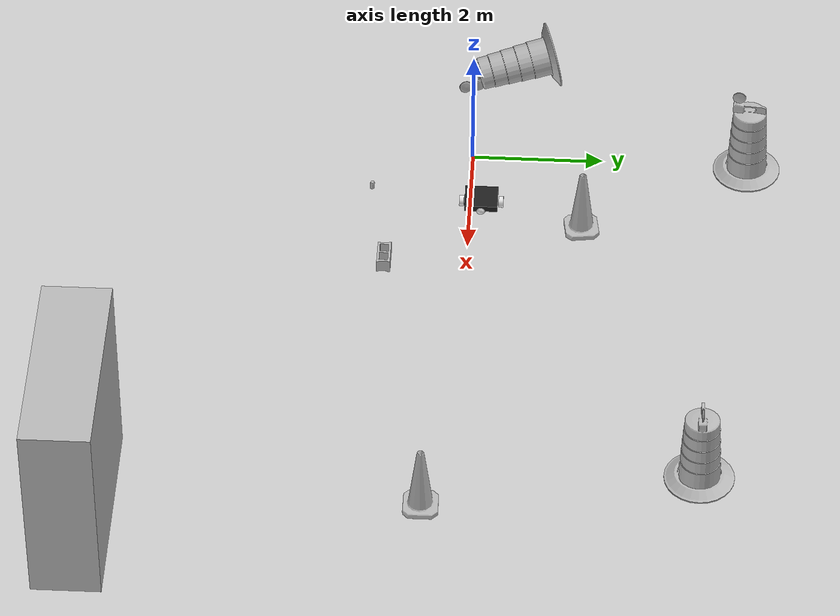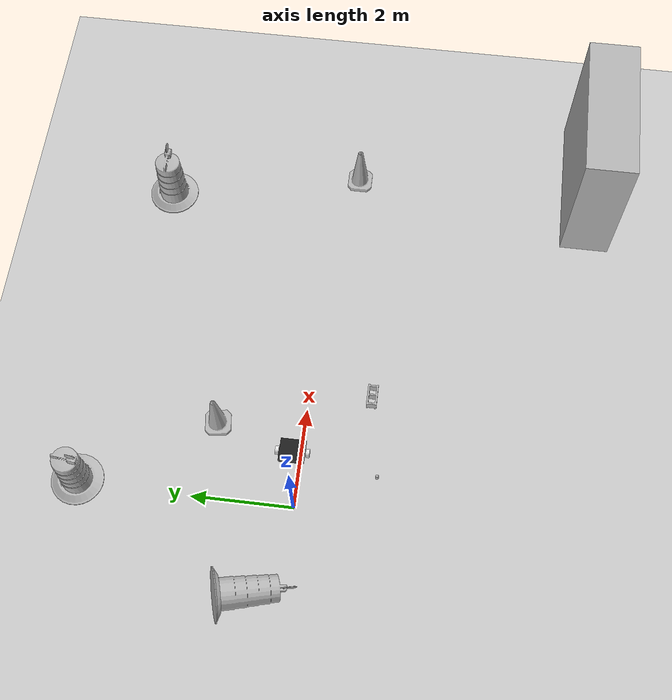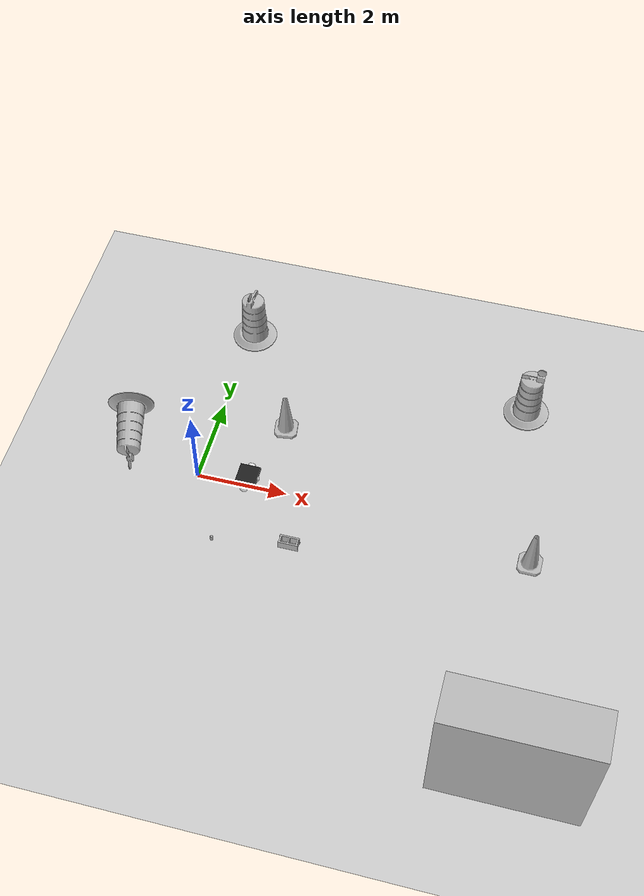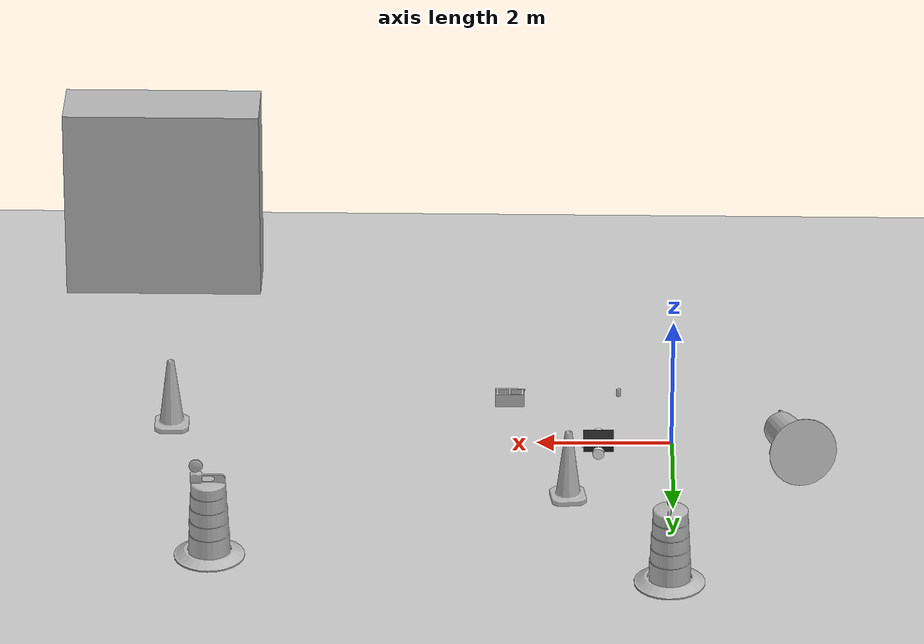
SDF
<sdf version="1.7">
 <world name="default">
  <light name="sun" type="directional">
   <pose>0 0 10 0 -0 0</pose>
   <diffuse>0.8 0.8 0.8 1</diffuse>
   <specular>0.2 0.2 0.2 1</specular>
   <attenuation>
    <range>1000</range>
    <constant>0.9</constant>
    <linear>0.01</linear>
    <quadratic>0.001</quadratic>
   </attenuation>
   <direction>-0.5 0.1 -0.9</direction>
   <spot><inner_angle>0</inner_angle><outer_angle>0</outer_angle><falloff>0</falloff></spot>
  </light>
  <model name="ground_plane">
   <static>1</static>
   <link name="link">
    <collision name="collision">
     <geometry><plane><normal>0 0 1</normal><size>100 100</size></plane></geometry>
     <surface>
      <contact><collide_bitmask>65535</collide_bitmask></contact>
      <friction><ode><mu>100</mu><mu2>50</mu2></ode></friction>
     </surface>
    </collision>
    <visual name="visual">
     <cast_shadows>0</cast_shadows>
     <geometry><plane><normal>0 0 1</normal><size>100 100</size></plane></geometry>
     <material>
      <script><uri>file://media/materials/scripts/gazebo.material</uri><name>Gazebo/Grey</name></script>
     </material>
    </visual>
   </link>
  </model>
  <gravity>0 0 -9.8</gravity>
  <magnetic_field>6e-06 2.3e-05 -4.2e-05</magnetic_field>
  <atmosphere type="adiabatic"/>
  <physics type="ode">
   <max_step_size>0.001</max_step_size>
   <real_time_factor>1</real_time_factor>
   <real_time_update_rate>1000</real_time_update_rate>
  </physics>
  <scene><ambient>0.4 0.4 0.4 1</ambient><background>0.7 0.7 0.7 1</background><shadows>1</shadows></scene>
  <audio><device>default</device></audio>
  <spherical_coordinates>
   <surface_model>EARTH_WGS84</surface_model>
   <latitude_deg>0</latitude_deg>
   <longitude_deg>0</longitude_deg>
   <elevation>0</elevation>
   <heading_deg>0</heading_deg>
  </spherical_coordinates>
  <model name="my_bot">
   <link name="base_link">
    <inertial>
     <pose>0.150329 0 0.049342 0 -0 0</pose>
     <mass>15.2</mass>
     <inertia>
      <ixx>0.326071</ixx>
      <ixy>0</ixy>
      <ixz>0.000246711</ixz>
      <iyy>0.26682</iyy>
      <iyz>0</iyz>
      <izz>0.566326</izz>
     </inertia>
    </inertial>
    <collision name="base_link_fixed_joint_lump__navi_collision">
     <pose>0 0 0.05 0 -0 0</pose>
     <geometry><box><size>0.45 0.5 0.1</size></box></geometry>
    </collision>
    <collision name="base_link_fixed_joint_lump__caster_wheel_collision_1">
     <pose>0.175 0 0 0 -0 0</pose>
     <geometry><sphere><radius>0.0825</radius></sphere></geometry>
     <surface><friction><ode><mu>0.001</mu><mu2>0.001</mu2></ode></friction></surface>
    </collision>
    <visual name="base_link_fixed_joint_lump__navi_visual">
     <pose>0 0 0.05 0 -0 0</pose>
     <geometry><box><size>0.45 0.5 0.1</size></box></geometry>
     <material>
      <script><name>Gazebo/Black</name><uri>file://media/materials/scripts/gazebo.material</uri></script>
     </material>
    </visual>
    <visual name="base_link_fixed_joint_lump__caster_wheel_visual_1">
     <pose>0.175 0 0 0 -0 0</pose>
     <geometry><sphere><radius>0.0825</radius></sphere></geometry>
     <material>
      <script><name>Gazebo/White</name><uri>file://media/materials/scripts/gazebo.material</uri></script>
     </material>
    </visual>
   </link>
   <joint name="left_wheel_joint" type="revolute">
    <pose relative_to="base_link">0 0.3 0 -1.5708 0 0</pose>
    <parent>base_link</parent>
    <child>left_wheel</child>
    <axis>
     <xyz>0 0 1</xyz>
     <limit><lower>-1e+16</lower><upper>1e+16</upper></limit>
     <dynamics><spring_reference>0</spring_reference><spring_stiffness>0</spring_stiffness></dynamics>
    </axis>
   </joint>
   <link name="left_wheel">
    <pose relative_to="left_wheel_joint">0 0 0 0 -0 0</pose>
    <inertial>
     <mass>4</mass>
     <inertia>
      <ixx>0.00885833</ixx>
      <ixy>0</ixy>
      <ixz>0</ixz>
      <iyy>0.00885833</iyy>
      <iyz>0</iyz>
      <izz>0.01445</izz>
     </inertia>
    </inertial>
    <collision name="left_wheel_collision">
     <geometry><cylinder><length>0.07</length><radius>0.085</radius></cylinder></geometry>
    </collision>
    <visual name="left_wheel_visual">
     <geometry><cylinder><length>0.07</length><radius>0.085</radius></cylinder></geometry>
     <material>
      <script><name>Gazebo/White</name><uri>file://media/materials/scripts/gazebo.material</uri></script>
     </material>
    </visual>
   </link>
   <joint name="right_wheel_joint" type="revolute">
    <pose relative_to="base_link">0 -0.3 0 1.5708 -0 0</pose>
    <parent>base_link</parent>
    <child>right_wheel</child>
    <axis>
     <xyz>0 0 -1</xyz>
     <limit><lower>-1e+16</lower><upper>1e+16</upper></limit>
     <dynamics><spring_reference>0</spring_reference><spring_stiffness>0</spring_stiffness></dynamics>
    </axis>
   </joint>
   <link name="right_wheel">
    <pose relative_to="right_wheel_joint">0 0 0 0 -0 0</pose>
    <inertial>
     <mass>4</mass>
     <inertia>
      <ixx>0.00885833</ixx>
      <ixy>0</ixy>
      <ixz>0</ixz>
      <iyy>0.00885833</iyy>
      <iyz>0</iyz>
      <izz>0.01445</izz>
     </inertia>
    </inertial>
    <collision name="right_wheel_collision">
     <geometry><cylinder><length>0.07</length><radius>0.085</radius></cylinder></geometry>
    </collision>
    <visual name="right_wheel_visual">
     <geometry><cylinder><length>0.07</length><radius>0.085</radius></cylinder></geometry>
     <material>
      <script><name>Gazebo/White</name><uri>file://media/materials/scripts/gazebo.material</uri></script>
     </material>
    </visual>
   </link>
   <static>0</static>
   <plugin name="diff_drive" filename="libgazebo_ros_diff_drive.so">
    <left_joint>left_wheel_joint</left_joint>
    <right_joint>right_wheel_joint</right_joint>
    <wheel_separation>0.6</wheel_separation>
    <wheel_diameter>0.17</wheel_diameter>
    <max_wheel_torque>200</max_wheel_torque>
    <max_wheel_acceleration>10.0</max_wheel_acceleration>
    <odometry_frame>odom</odometry_frame>
    <robot_base_frame>base_link</robot_base_frame>
    <publish_odom>1</publish_odom>
    <publish_odom_tf>1</publish_odom_tf>
    <publish_wheel_tf>1</publish_wheel_tf>
   </plugin>
   <pose>1.08512 0.172404 0.085 0 0.014313 0.000134</pose>
  </model>
  <model name="Construction Barrel">
   <link name="link">
    <inertial>
     <pose>0 0 0.4 0 -0 0</pose>
     <mass>500</mass>
     <inertia><ixx>51.2096</ixx><iyy>51.2096</iyy><izz>25</izz><ixy>0</ixy><ixz>0</ixz><iyz>0</iyz></inertia>
    </inertial>
    <collision name="collision">
     <geometry><mesh><uri>model://construction_barrel/meshes/construction_barrel.dae</uri></mesh></geometry>
    </collision>
    <visual name="visual">
     <geometry><mesh><uri>model://construction_barrel/meshes/construction_barrel.dae</uri></mesh></geometry>
    </visual>
   </link>
   <pose>-1.89946 1.17339 0.502161 2.47109 1.36201 1.14892</pose>
  </model>
  <model name="Construction Barrel_0">
   <link name="link">
    <inertial>
     <pose>0 0 0.4 0 -0 0</pose>
     <mass>500</mass>
     <inertia><ixx>51.2096</ixx><iyy>51.2096</iyy><izz>25</izz><ixy>0</ixy><ixz>0</ixz><iyz>0</iyz></inertia>
    </inertial>
    <collision name="collision">
     <geometry><mesh><uri>model://construction_barrel/meshes/construction_barrel.dae</uri></mesh></geometry>
    </collision>
    <visual name="visual">
     <geometry><mesh><uri>model://construction_barrel/meshes/construction_barrel.dae</uri></mesh></geometry>
    </visual>
   </link>
   <pose>0.079251 4.2054 -2e-06 -8e-06 -8e-06 -1.67871</pose>
  </model>
  <model name="cinder_block">
   <link name="link">
    <inertial>
     <pose>0 0 0.1016 0 -0 0</pose>
     <mass>5</mass>
     <inertia>
      <ixx>0.028705</ixx>
      <ixy>0</ixy>
      <iyy>0.073708</iyy>
      <ixz>0</ixz>
      <iyz>0</iyz>
      <izz>0.06908</izz>
     </inertia>
    </inertial>
    <visual name="visual">
     <geometry><mesh><uri>model://cinder_block/meshes/cinder_block.dae</uri></mesh></geometry>
    </visual>
    <collision name="left">
     <pose>0 -0.08465 0.1016 0 -0 0</pose>
     <geometry><box><size>0.43495 0.0339 0.2032</size></box></geometry>
     <surface>
      <contact><ode><max_vel>0.1</max_vel><min_depth>0.001</min_depth></ode></contact>
      <friction><ode><mu>1</mu><mu2>1</mu2></ode></friction>
     </surface>
    </collision>
    <collision name="right">
     <pose>0 0.08465 0.1016 0 -0 0</pose>
     <geometry><box><size>0.43495 0.0339 0.2032</size></box></geometry>
     <surface>
      <contact><ode><max_vel>0.1</max_vel><min_depth>0.001</min_depth></ode></contact>
      <friction><ode><mu>1</mu><mu2>1</mu2></ode></friction>
     </surface>
    </collision>
    <collision name="front">
     <pose>0.18625 0 0.1016 0 -0 0</pose>
     <geometry><box><size>0.0339 0.1354 0.203</size></box></geometry>
     <surface>
      <contact><ode><max_vel>0.1</max_vel><min_depth>0.001</min_depth></ode></contact>
      <friction><ode><mu>1</mu><mu2>1</mu2></ode></friction>
     </surface>
    </collision>
    <collision name="middle">
     <pose>0 0 0.1016 0 -0 0</pose>
     <geometry><box><size>0.0339 0.1354 0.203</size></box></geometry>
     <surface>
      <contact><ode><max_vel>0.1</max_vel><min_depth>0.001</min_depth></ode></contact>
      <friction><ode><mu>1</mu><mu2>1</mu2></ode></friction>
     </surface>
    </collision>
    <collision name="back">
     <pose>-0.18625 0 0.1016 0 -0 0</pose>
     <geometry><box><size>0.0339 0.1354 0.203</size></box></geometry>
     <surface>
      <contact><ode><max_vel>0.1</max_vel><min_depth>0.001</min_depth></ode></contact>
      <friction><ode><mu>1</mu><mu2>1</mu2></ode></friction>
     </surface>
    </collision>
   </link>
   <pose>2.40563 -1.23918 -6e-06 -1e-06 2.8e-05 -0</pose>
  </model>
  <model name="coke_can">
   <link name="link">
    <inertial>
     <pose>0 0 0.06 0 -0 0</pose>
     <mass>0.39</mass>
     <inertia>
      <ixx>0.00055575</ixx>
      <ixy>0</ixy>
      <ixz>0</ixz>
      <iyy>0.00055575</iyy>
      <iyz>0</iyz>
      <izz>0.0001755</izz>
     </inertia>
    </inertial>
    <collision name="collision">
     <pose>0.003937 0.004724 -0.18 0 -0 0</pose>
     <geometry><mesh><uri>model://coke_can/meshes/coke_can.dae</uri></mesh></geometry>
     <surface>
      <friction><ode><mu>1</mu><mu2>1</mu2></ode></friction>
      <contact><ode><kp>1e+07</kp><kd>1</kd><min_depth>0.001</min_depth><max_vel>0.1</max_vel></ode></contact>
     </surface>
    </collision>
    <visual name="visual">
     <pose>0.003937 0.004724 -0.18 0 -0 0</pose>
     <geometry><mesh><uri>model://coke_can/meshes/coke_can.dae</uri></mesh></geometry>
    </visual>
   </link>
   <pose>0.779688 -1.51308 -0.002905 -0.064009 -0.006334 -0.000612</pose>
  </model>
  <model name="Construction Cone">
   <link name="link">
    <collision name="collision">
     <geometry>
      <mesh><scale>10 10 10</scale><uri>model://construction_cone/meshes/construction_cone.dae</uri></mesh>
     </geometry>
    </collision>
    <visual name="visual">
     <geometry>
      <mesh><scale>10 10 10</scale><uri>model://construction_cone/meshes/construction_cone.dae</uri></mesh>
     </geometry>
    </visual>
    <inertial>
     <inertia><ixx>1</ixx><ixy>0</ixy><ixz>0</ixz><iyy>1</iyy><iyz>0</iyz><izz>1</izz></inertia>
     <mass>1</mass>
    </inertial>
   </link>
   <pose>1.53052 1.70664 -0 0 -0 0.134745</pose>
  </model>
  <model name="Construction Barrel_1">
   <link name="link">
    <inertial>
     <pose>0 0 0.4 0 -0 0</pose>
     <mass>500</mass>
     <inertia><ixx>51.2096</ixx><iyy>51.2096</iyy><izz>25</izz><ixy>0</ixy><ixz>0</ixz><iyz>0</iyz></inertia>
    </inertial>
    <collision name="collision">
     <geometry><mesh><uri>model://construction_barrel/meshes/construction_barrel.dae</uri></mesh></geometry>
    </collision>
    <visual name="visual">
     <geometry><mesh><uri>model://construction_barrel/meshes/construction_barrel.dae</uri></mesh></geometry>
    </visual>
   </link>
   <pose>6.66789 3.52505 1e-06 2e-06 3e-06 -6e-06</pose>
  </model>
  <model name="Construction Cone_0">
   <link name="link">
    <collision name="collision">
     <geometry>
      <mesh><scale>10 10 10</scale><uri>model://construction_cone/meshes/construction_cone.dae</uri></mesh>
     </geometry>
    </collision>
    <visual name="visual">
     <geometry>
      <mesh><scale>10 10 10</scale><uri>model://construction_cone/meshes/construction_cone.dae</uri></mesh>
     </geometry>
    </visual>
    <inertial>
     <inertia><ixx>1</ixx><ixy>0</ixy><ixz>0</ixz><iyy>1</iyy><iyz>0</iyz><izz>1</izz></inertia>
     <mass>1</mass>
    </inertial>
   </link>
   <pose>7.42487 -0.432216 -0 0 -0 0</pose>
  </model>
  <model name="brick_box_3x1x3">
   <static>1</static>
   <link name="chassis">
    <pose>0 0 1.5 0 -0 0</pose>
    <collision name="collision"><geometry><box><size>3 1 3</size></box></geometry></collision>
    <visual name="visual">
     <geometry><mesh><uri>model://brick_box_3x1x3/meshes/simple_box.dae</uri><scale>3 1 3</scale></mesh></geometry>
     <material>
      <script>
       <uri>model://brick_box_3x1x3/materials/scripts</uri>
       <uri>model://brick_box_3x1x3/materials/textures</uri>
       <name>BrickBox/Diffuse</name>
      </script>
     </material>
    </visual>
   </link>
   <pose>7.79559 -5.30282 0 0 -0 0</pose>
  </model>
 </world>
</sdf>
